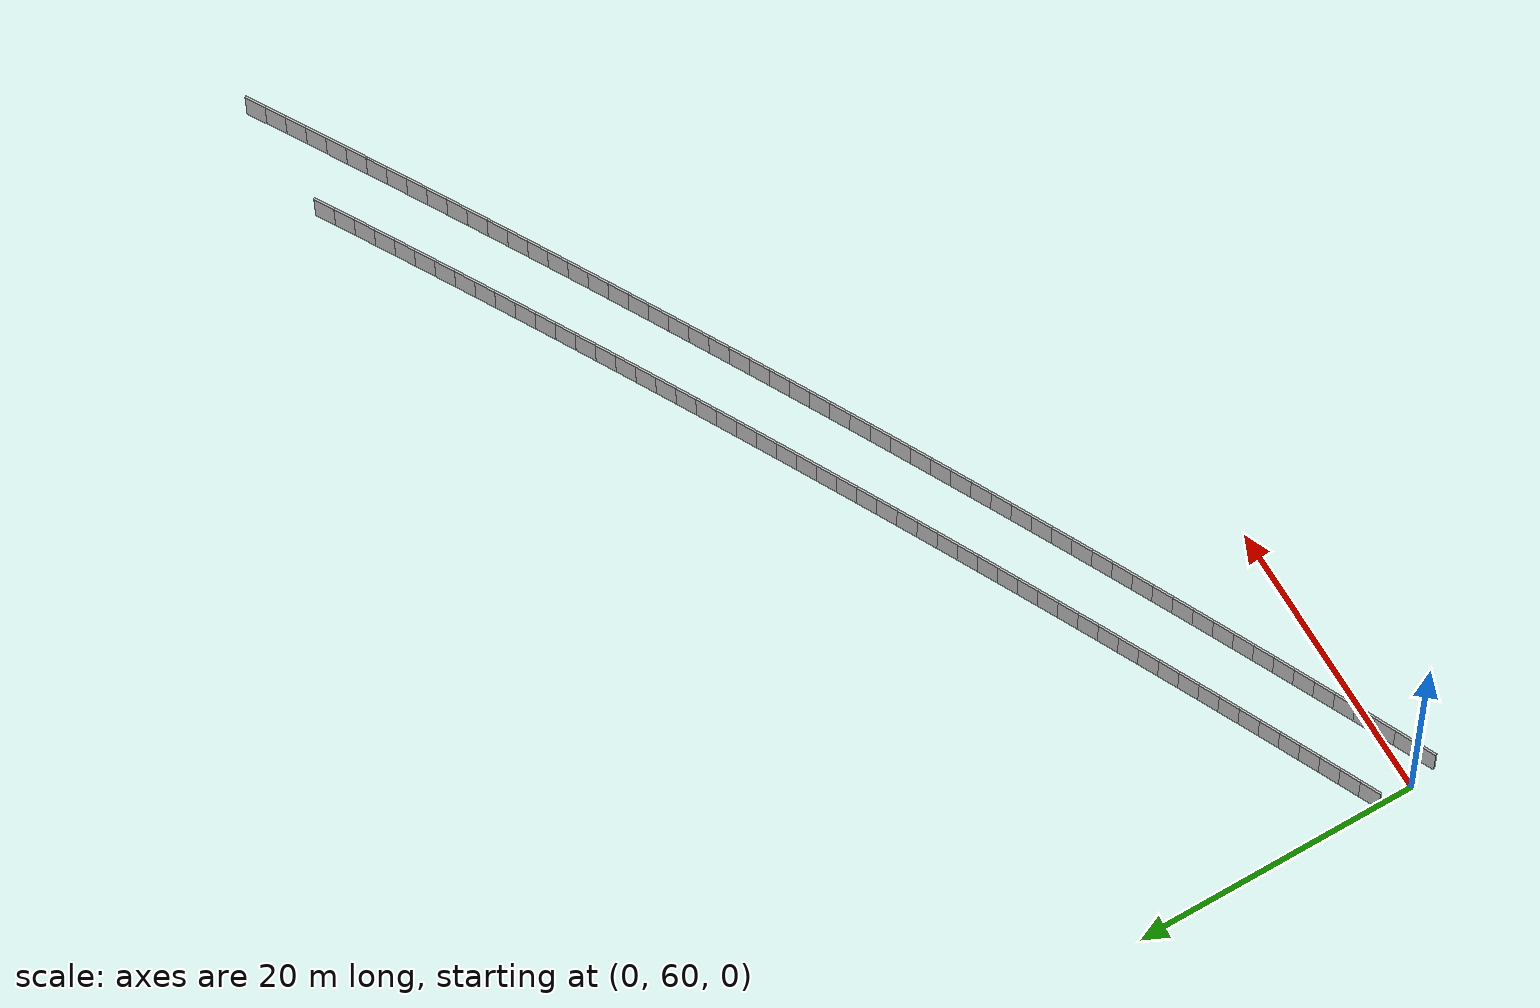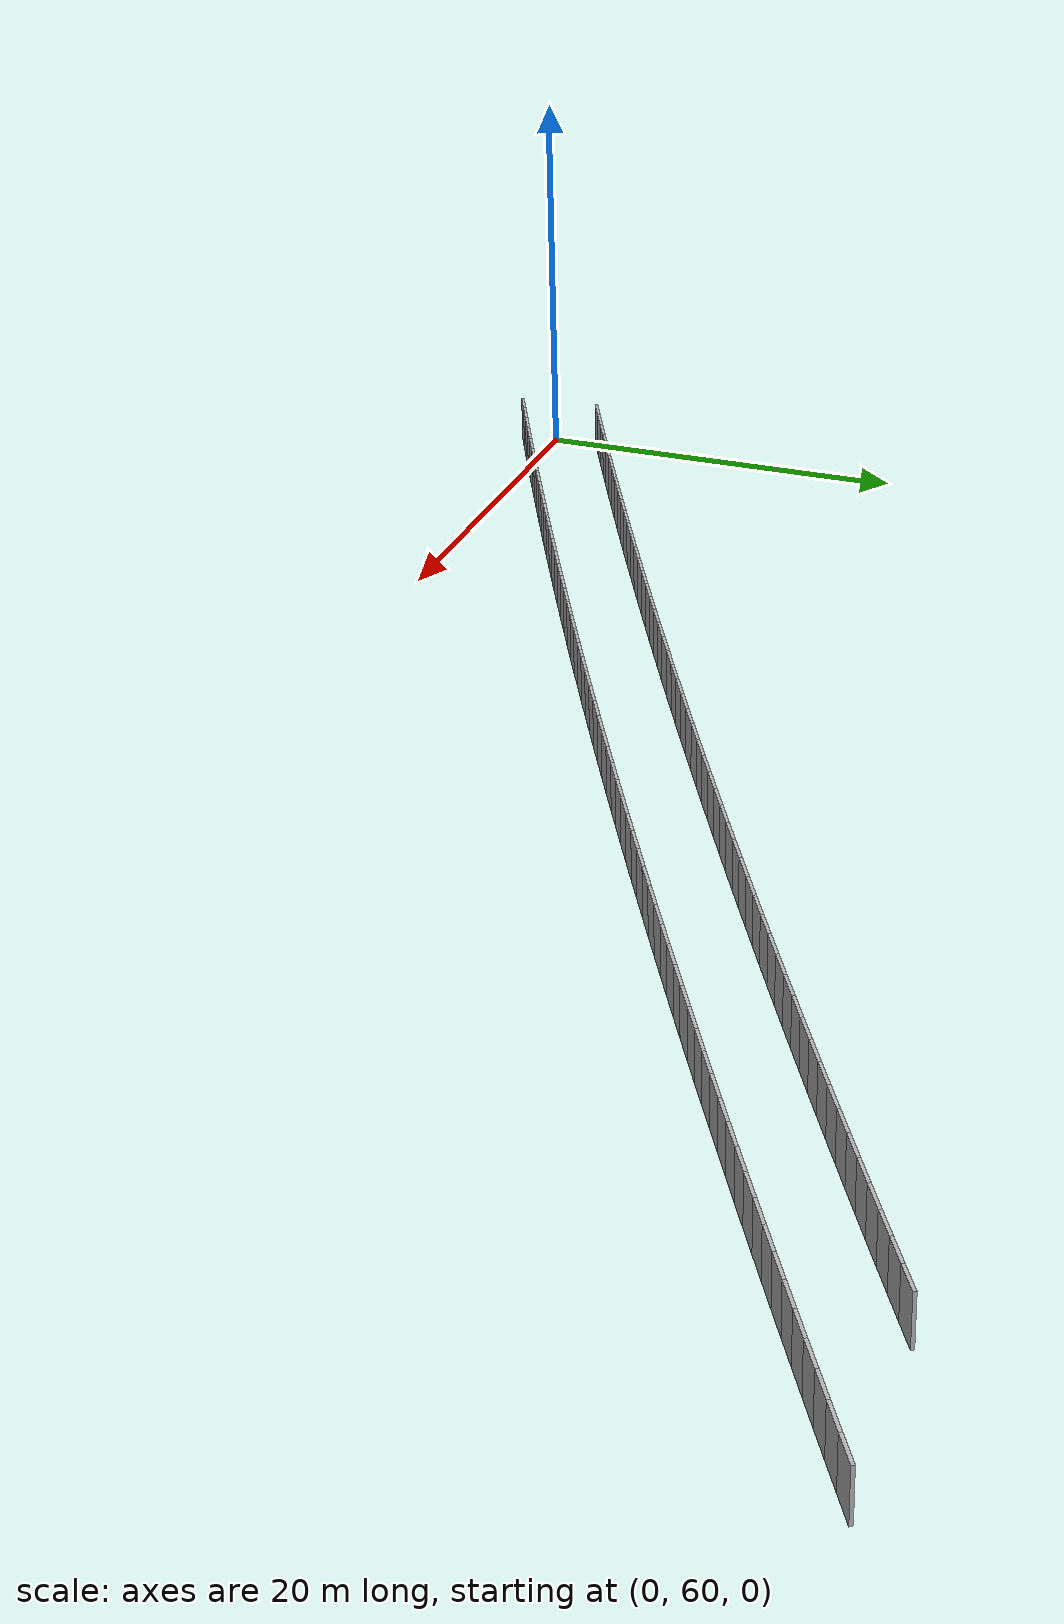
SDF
<sdf version="1.6">
 <model name="sps_1702">
  <static>1</static>
  <allow_auto_disable>0</allow_auto_disable>
  <link name="Wall3988">
   <collision name="collision"><geometry><box><size>1.49651 0.15 2.5</size></box></geometry></collision>
   <visual name="visual">
    <geometry><box><size>1.49651 0.15 2.5</size></box></geometry>
    <transparency>0.0</transparency>
   </visual>
   <pose>0.59185 62.7953 1.25 0 -0 0.449329</pose>
  </link>
  <link name="Wall3989">
   <collision name="collision"><geometry><box><size>1.4967 0.15 2.5</size></box></geometry></collision>
   <visual name="visual">
    <geometry><box><size>1.4967 0.15 2.5</size></box></geometry>
    <transparency>0.0</transparency>
   </visual>
   <pose>1.93944 63.4463 1.25 0 -0 0.450717</pose>
  </link>
  <link name="Wall3990">
   <collision name="collision"><geometry><box><size>1.49639 0.15 2.5</size></box></geometry></collision>
   <visual name="visual">
    <geometry><box><size>1.49639 0.15 2.5</size></box></geometry>
    <transparency>0.0</transparency>
   </visual>
   <pose>3.28597 64.0994 1.25 0 -0 0.452447</pose>
  </link>
  <link name="Wall3991">
   <collision name="collision"><geometry><box><size>1.49669 0.15 2.5</size></box></geometry></collision>
   <visual name="visual">
    <geometry><box><size>1.49669 0.15 2.5</size></box></geometry>
    <transparency>0.0</transparency>
   </visual>
   <pose>4.63137 64.7548 1.25 0 -0 0.454164</pose>
  </link>
  <link name="Wall3992">
   <collision name="collision"><geometry><box><size>1.49643 0.15 2.5</size></box></geometry></collision>
   <visual name="visual">
    <geometry><box><size>1.49643 0.15 2.5</size></box></geometry>
    <transparency>0.0</transparency>
   </visual>
   <pose>5.97576 65.4123 1.25 0 -0 0.455567</pose>
  </link>
  <link name="Wall3993">
   <collision name="collision"><geometry><box><size>1.49649 0.15 2.5</size></box></geometry></collision>
   <visual name="visual">
    <geometry><box><size>1.49649 0.15 2.5</size></box></geometry>
    <transparency>0.0</transparency>
   </visual>
   <pose>7.31905 66.0718 1.25 0 -0 0.457227</pose>
  </link>
  <link name="Wall3994">
   <collision name="collision"><geometry><box><size>1.49656 0.15 2.5</size></box></geometry></collision>
   <visual name="visual">
    <geometry><box><size>1.49656 0.15 2.5</size></box></geometry>
    <transparency>0.0</transparency>
   </visual>
   <pose>8.66134 66.7335 1.25 0 -0 0.458796</pose>
  </link>
  <link name="Wall3995">
   <collision name="collision"><geometry><box><size>1.4965 0.15 2.5</size></box></geometry></collision>
   <visual name="visual">
    <geometry><box><size>1.4965 0.15 2.5</size></box></geometry>
    <transparency>0.0</transparency>
   </visual>
   <pose>10.0026 67.3974 1.25 0 -0 0.460456</pose>
  </link>
  <link name="Wall3996">
   <collision name="collision"><geometry><box><size>1.49663 0.15 2.5</size></box></geometry></collision>
   <visual name="visual">
    <geometry><box><size>1.49663 0.15 2.5</size></box></geometry>
    <transparency>0.0</transparency>
   </visual>
   <pose>11.3428 68.0634 1.25 0 -0 0.461915</pose>
  </link>
  <link name="Wall3997">
   <collision name="collision"><geometry><box><size>1.49627 0.15 2.5</size></box></geometry></collision>
   <visual name="visual">
    <geometry><box><size>1.49627 0.15 2.5</size></box></geometry>
    <transparency>0.0</transparency>
   </visual>
   <pose>12.6818 68.7314 1.25 0 -0 0.463538</pose>
  </link>
  <link name="Wall3998">
   <collision name="collision"><geometry><box><size>1.49638 0.15 2.5</size></box></geometry></collision>
   <visual name="visual">
    <geometry><box><size>1.49638 0.15 2.5</size></box></geometry>
    <transparency>0.0</transparency>
   </visual>
   <pose>14.0197 69.4015 1.25 0 -0 0.465143</pose>
  </link>
  <link name="Wall3999">
   <collision name="collision"><geometry><box><size>1.4965 0.15 2.5</size></box></geometry></collision>
   <visual name="visual">
    <geometry><box><size>1.4965 0.15 2.5</size></box></geometry>
    <transparency>0.0</transparency>
   </visual>
   <pose>15.3567 70.0738 1.25 0 -0 0.466748</pose>
  </link>
  <link name="Wall4000">
   <collision name="collision"><geometry><box><size>1.49672 0.15 2.5</size></box></geometry></collision>
   <visual name="visual">
    <geometry><box><size>1.49672 0.15 2.5</size></box></geometry>
    <transparency>0.0</transparency>
   </visual>
   <pose>16.6926 70.7483 1.25 0 -0 0.468316</pose>
  </link>
  <link name="Wall4001">
   <collision name="collision"><geometry><box><size>1.4966 0.15 2.5</size></box></geometry></collision>
   <visual name="visual">
    <geometry><box><size>1.4966 0.15 2.5</size></box></geometry>
    <transparency>0.0</transparency>
   </visual>
   <pose>18.0276 71.4249 1.25 0 -0 0.469867</pose>
  </link>
  <link name="Wall4002">
   <collision name="collision"><geometry><box><size>1.49651 0.15 2.5</size></box></geometry></collision>
   <visual name="visual">
    <geometry><box><size>1.49651 0.15 2.5</size></box></geometry>
    <transparency>0.0</transparency>
   </visual>
   <pose>19.3614 72.1036 1.25 0 -0 0.471545</pose>
  </link>
  <link name="Wall4003">
   <collision name="collision"><geometry><box><size>1.49656 0.15 2.5</size></box></geometry></collision>
   <visual name="visual">
    <geometry><box><size>1.49656 0.15 2.5</size></box></geometry>
    <transparency>0.0</transparency>
   </visual>
   <pose>20.6941 72.7844 1.25 0 -0 0.473041</pose>
  </link>
  <link name="Wall4004">
   <collision name="collision"><geometry><box><size>1.49661 0.15 2.5</size></box></geometry></collision>
   <visual name="visual">
    <geometry><box><size>1.49661 0.15 2.5</size></box></geometry>
    <transparency>0.0</transparency>
   </visual>
   <pose>22.0258 73.4673 1.25 0 -0 0.474627</pose>
  </link>
  <link name="Wall4005">
   <collision name="collision"><geometry><box><size>1.49636 0.15 2.5</size></box></geometry></collision>
   <visual name="visual">
    <geometry><box><size>1.49636 0.15 2.5</size></box></geometry>
    <transparency>0.0</transparency>
   </visual>
   <pose>23.3563 74.1523 1.25 0 -0 0.476271</pose>
  </link>
  <link name="Wall4006">
   <collision name="collision"><geometry><box><size>1.49658 0.15 2.5</size></box></geometry></collision>
   <visual name="visual">
    <geometry><box><size>1.49658 0.15 2.5</size></box></geometry>
    <transparency>0.0</transparency>
   </visual>
   <pose>24.6858 74.8394 1.25 0 -0 0.477801</pose>
  </link>
  <link name="Wall4007">
   <collision name="collision"><geometry><box><size>1.49676 0.15 2.5</size></box></geometry></collision>
   <visual name="visual">
    <geometry><box><size>1.49676 0.15 2.5</size></box></geometry>
    <transparency>0.0</transparency>
   </visual>
   <pose>26.0142 75.5287 1.25 0 -0 0.479441</pose>
  </link>
  <link name="Wall4008">
   <collision name="collision"><geometry><box><size>1.49642 0.15 2.5</size></box></geometry></collision>
   <visual name="visual">
    <geometry><box><size>1.49642 0.15 2.5</size></box></geometry>
    <transparency>0.0</transparency>
   </visual>
   <pose>27.3415 76.2201 1.25 0 -0 0.481032</pose>
  </link>
  <link name="Wall4009">
   <collision name="collision"><geometry><box><size>1.49648 0.15 2.5</size></box></geometry></collision>
   <visual name="visual">
    <geometry><box><size>1.49648 0.15 2.5</size></box></geometry>
    <transparency>0.0</transparency>
   </visual>
   <pose>28.6677 76.9135 1.25 0 -0 0.482527</pose>
  </link>
  <link name="Wall4010">
   <collision name="collision"><geometry><box><size>1.49659 0.15 2.5</size></box></geometry></collision>
   <visual name="visual">
    <geometry><box><size>1.49659 0.15 2.5</size></box></geometry>
    <transparency>0.0</transparency>
   </visual>
   <pose>29.9928 77.609 1.25 0 -0 0.484149</pose>
  </link>
  <link name="Wall4011">
   <collision name="collision"><geometry><box><size>1.4965 0.15 2.5</size></box></geometry></collision>
   <visual name="visual">
    <geometry><box><size>1.4965 0.15 2.5</size></box></geometry>
    <transparency>0.0</transparency>
   </visual>
   <pose>31.3168 78.3066 1.25 0 -0 0.485701</pose>
  </link>
  <link name="Wall4012">
   <collision name="collision"><geometry><box><size>1.49645 0.15 2.5</size></box></geometry></collision>
   <visual name="visual">
    <geometry><box><size>1.49645 0.15 2.5</size></box></geometry>
    <transparency>0.0</transparency>
   </visual>
   <pose>32.6396 79.0063 1.25 0 -0 0.487381</pose>
  </link>
  <link name="Wall4013">
   <collision name="collision"><geometry><box><size>1.49661 0.15 2.5</size></box></geometry></collision>
   <visual name="visual">
    <geometry><box><size>1.49661 0.15 2.5</size></box></geometry>
    <transparency>0.0</transparency>
   </visual>
   <pose>33.9614 79.7081 1.25 0 -0 0.488801</pose>
  </link>
  <link name="Wall4014">
   <collision name="collision"><geometry><box><size>1.49649 0.15 2.5</size></box></geometry></collision>
   <visual name="visual">
    <geometry><box><size>1.49649 0.15 2.5</size></box></geometry>
    <transparency>0.0</transparency>
   </visual>
   <pose>35.282 80.412 1.25 0 -0 0.490555</pose>
  </link>
  <link name="Wall4015">
   <collision name="collision"><geometry><box><size>1.49657 0.15 2.5</size></box></geometry></collision>
   <visual name="visual">
    <geometry><box><size>1.49657 0.15 2.5</size></box></geometry>
    <transparency>0.0</transparency>
   </visual>
   <pose>36.6016 81.118 1.25 0 -0 0.492049</pose>
  </link>
  <link name="Wall4016">
   <collision name="collision"><geometry><box><size>1.49651 0.15 2.5</size></box></geometry></collision>
   <visual name="visual">
    <geometry><box><size>1.49651 0.15 2.5</size></box></geometry>
    <transparency>0.0</transparency>
   </visual>
   <pose>37.92 81.8261 1.25 0 -0 0.493693</pose>
  </link>
  <link name="Wall4017">
   <collision name="collision"><geometry><box><size>1.49674 0.15 2.5</size></box></geometry></collision>
   <visual name="visual">
    <geometry><box><size>1.49674 0.15 2.5</size></box></geometry>
    <transparency>0.0</transparency>
   </visual>
   <pose>39.2374 82.5363 1.25 0 -0 0.495184</pose>
  </link>
  <link name="Wall4018">
   <collision name="collision"><geometry><box><size>1.49658 0.15 2.5</size></box></geometry></collision>
   <visual name="visual">
    <geometry><box><size>1.49658 0.15 2.5</size></box></geometry>
    <transparency>0.0</transparency>
   </visual>
   <pose>40.5536 83.2486 1.25 0 -0 0.496867</pose>
  </link>
  <link name="Wall4019">
   <collision name="collision"><geometry><box><size>1.49647 0.15 2.5</size></box></geometry></collision>
   <visual name="visual">
    <geometry><box><size>1.49647 0.15 2.5</size></box></geometry>
    <transparency>0.0</transparency>
   </visual>
   <pose>41.8686 83.963 1.25 0 -0 0.498439</pose>
  </link>
  <link name="Wall4020">
   <collision name="collision"><geometry><box><size>1.49641 0.15 2.5</size></box></geometry></collision>
   <visual name="visual">
    <geometry><box><size>1.49641 0.15 2.5</size></box></geometry>
    <transparency>0.0</transparency>
   </visual>
   <pose>43.1825 84.6794 1.25 0 -0 0.499991</pose>
  </link>
  <link name="Wall4021">
   <collision name="collision"><geometry><box><size>1.49656 0.15 2.5</size></box></geometry></collision>
   <visual name="visual">
    <geometry><box><size>1.49656 0.15 2.5</size></box></geometry>
    <transparency>0.0</transparency>
   </visual>
   <pose>44.4952 85.3979 1.25 0 -0 0.501612</pose>
  </link>
  <link name="Wall4022">
   <collision name="collision"><geometry><box><size>1.49655 0.15 2.5</size></box></geometry></collision>
   <visual name="visual">
    <geometry><box><size>1.49655 0.15 2.5</size></box></geometry>
    <transparency>0.0</transparency>
   </visual>
   <pose>45.8068 86.1186 1.25 0 -0 0.503292</pose>
  </link>
  <link name="Wall4023">
   <collision name="collision"><geometry><box><size>1.49639 0.15 2.5</size></box></geometry></collision>
   <visual name="visual">
    <geometry><box><size>1.49639 0.15 2.5</size></box></geometry>
    <transparency>0.0</transparency>
   </visual>
   <pose>47.1171 86.8413 1.25 0 -0 0.504702</pose>
  </link>
  <link name="Wall4024">
   <collision name="collision"><geometry><box><size>1.49657 0.15 2.5</size></box></geometry></collision>
   <visual name="visual">
    <geometry><box><size>1.49657 0.15 2.5</size></box></geometry>
    <transparency>0.0</transparency>
   </visual>
   <pose>48.4264 87.566 1.25 0 -0 0.506358</pose>
  </link>
  <link name="Wall4025">
   <collision name="collision"><geometry><box><size>1.49651 0.15 2.5</size></box></geometry></collision>
   <visual name="visual">
    <geometry><box><size>1.49651 0.15 2.5</size></box></geometry>
    <transparency>0.0</transparency>
   </visual>
   <pose>49.7346 88.2928 1.25 0 -0 0.507875</pose>
  </link>
  <link name="Wall4026">
   <collision name="collision"><geometry><box><size>1.49667 0.15 2.5</size></box></geometry></collision>
   <visual name="visual">
    <geometry><box><size>1.49667 0.15 2.5</size></box></geometry>
    <transparency>0.0</transparency>
   </visual>
   <pose>51.0417 89.0217 1.25 0 -0 0.509495</pose>
  </link>
  <link name="Wall4027">
   <collision name="collision"><geometry><box><size>1.49648 0.15 2.5</size></box></geometry></collision>
   <visual name="visual">
    <geometry><box><size>1.49648 0.15 2.5</size></box></geometry>
    <transparency>0.0</transparency>
   </visual>
   <pose>52.3476 89.7527 1.25 0 -0 0.511108</pose>
  </link>
  <link name="Wall4028">
   <collision name="collision"><geometry><box><size>1.49656 0.15 2.5</size></box></geometry></collision>
   <visual name="visual">
    <geometry><box><size>1.49656 0.15 2.5</size></box></geometry>
    <transparency>0.0</transparency>
   </visual>
   <pose>53.6524 90.4857 1.25 0 -0 0.512621</pose>
  </link>
  <link name="Wall4029">
   <collision name="collision"><geometry><box><size>1.49658 0.15 2.5</size></box></geometry></collision>
   <visual name="visual">
    <geometry><box><size>1.49658 0.15 2.5</size></box></geometry>
    <transparency>0.0</transparency>
   </visual>
   <pose>54.956 91.2208 1.25 0 -0 0.5143</pose>
  </link>
  <link name="Wall4030">
   <collision name="collision"><geometry><box><size>1.49656 0.15 2.5</size></box></geometry></collision>
   <visual name="visual">
    <geometry><box><size>1.49656 0.15 2.5</size></box></geometry>
    <transparency>0.0</transparency>
   </visual>
   <pose>56.2584 91.958 1.25 0 -0 0.515853</pose>
  </link>
  <link name="Wall4031">
   <collision name="collision"><geometry><box><size>1.49647 0.15 2.5</size></box></geometry></collision>
   <visual name="visual">
    <geometry><box><size>1.49647 0.15 2.5</size></box></geometry>
    <transparency>0.0</transparency>
   </visual>
   <pose>57.5596 92.6972 1.25 0 -0 0.517391</pose>
  </link>
  <link name="Wall4032">
   <collision name="collision"><geometry><box><size>1.49652 0.15 2.5</size></box></geometry></collision>
   <visual name="visual">
    <geometry><box><size>1.49652 0.15 2.5</size></box></geometry>
    <transparency>0.0</transparency>
   </visual>
   <pose>58.8595 93.4385 1.25 0 -0 0.519106</pose>
  </link>
  <link name="Wall4033">
   <collision name="collision"><geometry><box><size>1.49649 0.15 2.5</size></box></geometry></collision>
   <visual name="visual">
    <geometry><box><size>1.49649 0.15 2.5</size></box></geometry>
    <transparency>0.0</transparency>
   </visual>
   <pose>60.1583 94.1819 1.25 0 -0 0.520623</pose>
  </link>
  <link name="Wall4034">
   <collision name="collision"><geometry><box><size>1.49659 0.15 2.5</size></box></geometry></collision>
   <visual name="visual">
    <geometry><box><size>1.49659 0.15 2.5</size></box></geometry>
    <transparency>0.0</transparency>
   </visual>
   <pose>61.456 94.9273 1.25 0 -0 0.522136</pose>
  </link>
  <link name="Wall4035">
   <collision name="collision"><geometry><box><size>1.49659 0.15 2.5</size></box></geometry></collision>
   <visual name="visual">
    <geometry><box><size>1.49659 0.15 2.5</size></box></geometry>
    <transparency>0.0</transparency>
   </visual>
   <pose>62.7526 95.6747 1.25 0 -0 0.523689</pose>
  </link>
  <link name="Wall4036">
   <collision name="collision"><geometry><box><size>1.49648 0.15 2.5</size></box></geometry></collision>
   <visual name="visual">
    <geometry><box><size>1.49648 0.15 2.5</size></box></geometry>
    <transparency>0.0</transparency>
   </visual>
   <pose>64.048 96.4242 1.25 0 -0 0.525429</pose>
  </link>
  <link name="Wall4037">
   <collision name="collision"><geometry><box><size>1.4964 0.15 2.5</size></box></geometry></collision>
   <visual name="visual">
    <geometry><box><size>1.4964 0.15 2.5</size></box></geometry>
    <transparency>0.0</transparency>
   </visual>
   <pose>65.342 97.1758 1.25 0 -0 0.526968</pose>
  </link>
  <link name="Wall4038">
   <collision name="collision"><geometry><box><size>1.49643 0.15 2.5</size></box></geometry></collision>
   <visual name="visual">
    <geometry><box><size>1.49643 0.15 2.5</size></box></geometry>
    <transparency>0.0</transparency>
   </visual>
   <pose>66.6348 97.9293 1.25 0 -0 0.528374</pose>
  </link>
  <link name="Wall4039">
   <collision name="collision"><geometry><box><size>1.49666 0.15 2.5</size></box></geometry></collision>
   <visual name="visual">
    <geometry><box><size>1.49666 0.15 2.5</size></box></geometry>
    <transparency>0.0</transparency>
   </visual>
   <pose>67.9266 98.6849 1.25 0 -0 0.530173</pose>
  </link>
  <link name="Wall4040">
   <collision name="collision"><geometry><box><size>1.49656 0.15 2.5</size></box></geometry></collision>
   <visual name="visual">
    <geometry><box><size>1.49656 0.15 2.5</size></box></geometry>
    <transparency>0.0</transparency>
   </visual>
   <pose>69.2172 99.4426 1.25 0 -0 0.531586</pose>
  </link>
  <link name="Wall7762">
   <collision name="collision"><geometry><box><size>1.50307 0.15 2.5</size></box></geometry></collision>
   <visual name="visual">
    <geometry><box><size>1.50307 0.15 2.5</size></box></geometry>
    <transparency>0.0</transparency>
   </visual>
   <pose>1.03774 58.4148 1.25 0 -0 0.44763</pose>
  </link>
  <link name="Wall7763">
   <collision name="collision"><geometry><box><size>1.50317 0.15 2.5</size></box></geometry></collision>
   <visual name="visual">
    <geometry><box><size>1.50317 0.15 2.5</size></box></geometry>
    <transparency>0.0</transparency>
   </visual>
   <pose>2.39223 59.0665 1.25 0 -0 0.449265</pose>
  </link>
  <link name="Wall7764">
   <collision name="collision"><geometry><box><size>1.50305 0.15 2.5</size></box></geometry></collision>
   <visual name="visual">
    <geometry><box><size>1.50305 0.15 2.5</size></box></geometry>
    <transparency>0.0</transparency>
   </visual>
   <pose>3.74566 59.7204 1.25 0 -0 0.450881</pose>
  </link>
  <link name="Wall7765">
   <collision name="collision"><geometry><box><size>1.50297 0.15 2.5</size></box></geometry></collision>
   <visual name="visual">
    <geometry><box><size>1.50297 0.15 2.5</size></box></geometry>
    <transparency>0.0</transparency>
   </visual>
   <pose>5.09795 60.3764 1.25 0 -0 0.452442</pose>
  </link>
  <link name="Wall7766">
   <collision name="collision"><geometry><box><size>1.50316 0.15 2.5</size></box></geometry></collision>
   <visual name="visual">
    <geometry><box><size>1.50316 0.15 2.5</size></box></geometry>
    <transparency>0.0</transparency>
   </visual>
   <pose>6.44924 61.0346 1.25 0 -0 0.454096</pose>
  </link>
  <link name="Wall7767">
   <collision name="collision"><geometry><box><size>1.50298 0.15 2.5</size></box></geometry></collision>
   <visual name="visual">
    <geometry><box><size>1.50298 0.15 2.5</size></box></geometry>
    <transparency>0.0</transparency>
   </visual>
   <pose>7.79946 61.695 1.25 0 -0 0.455693</pose>
  </link>
  <link name="Wall7768">
   <collision name="collision"><geometry><box><size>1.50321 0.15 2.5</size></box></geometry></collision>
   <visual name="visual">
    <geometry><box><size>1.50321 0.15 2.5</size></box></geometry>
    <transparency>0.0</transparency>
   </visual>
   <pose>9.14867 62.3575 1.25 0 -0 0.457201</pose>
  </link>
  <link name="Wall7769">
   <collision name="collision"><geometry><box><size>1.503 0.15 2.5</size></box></geometry></collision>
   <visual name="visual">
    <geometry><box><size>1.503 0.15 2.5</size></box></geometry>
    <transparency>0.0</transparency>
   </visual>
   <pose>10.4969 63.0221 1.25 0 -0 0.458762</pose>
  </link>
  <link name="Wall7770">
   <collision name="collision"><geometry><box><size>1.50316 0.15 2.5</size></box></geometry></collision>
   <visual name="visual">
    <geometry><box><size>1.50316 0.15 2.5</size></box></geometry>
    <transparency>0.0</transparency>
   </visual>
   <pose>11.844 63.6889 1.25 0 -0 0.460524</pose>
  </link>
  <link name="Wall7771">
   <collision name="collision"><geometry><box><size>1.50299 0.15 2.5</size></box></geometry></collision>
   <visual name="visual">
    <geometry><box><size>1.50299 0.15 2.5</size></box></geometry>
    <transparency>0.0</transparency>
   </visual>
   <pose>13.1899 64.3579 1.25 0 -0 0.462031</pose>
  </link>
  <link name="Wall7772">
   <collision name="collision"><geometry><box><size>1.50301 0.15 2.5</size></box></geometry></collision>
   <visual name="visual">
    <geometry><box><size>1.50301 0.15 2.5</size></box></geometry>
    <transparency>0.0</transparency>
   </visual>
   <pose>14.5348 65.0289 1.25 0 -0 0.46352</pose>
  </link>
  <link name="Wall7773">
   <collision name="collision"><geometry><box><size>1.50307 0.15 2.5</size></box></geometry></collision>
   <visual name="visual">
    <geometry><box><size>1.50307 0.15 2.5</size></box></geometry>
    <transparency>0.0</transparency>
   </visual>
   <pose>15.8787 65.702 1.25 0 -0 0.465137</pose>
  </link>
  <link name="Wall7774">
   <collision name="collision"><geometry><box><size>1.50318 0.15 2.5</size></box></geometry></collision>
   <visual name="visual">
    <geometry><box><size>1.50318 0.15 2.5</size></box></geometry>
    <transparency>0.0</transparency>
   </visual>
   <pose>17.2216 66.3773 1.25 0 -0 0.466735</pose>
  </link>
  <link name="Wall7775">
   <collision name="collision"><geometry><box><size>1.503 0.15 2.5</size></box></geometry></collision>
   <visual name="visual">
    <geometry><box><size>1.503 0.15 2.5</size></box></geometry>
    <transparency>0.0</transparency>
   </visual>
   <pose>18.5634 67.0547 1.25 0 -0 0.468297</pose>
  </link>
  <link name="Wall7776">
   <collision name="collision"><geometry><box><size>1.50312 0.15 2.5</size></box></geometry></collision>
   <visual name="visual">
    <geometry><box><size>1.50312 0.15 2.5</size></box></geometry>
    <transparency>0.0</transparency>
   </visual>
   <pose>19.9041 67.7342 1.25 0 -0 0.469894</pose>
  </link>
  <link name="Wall7777">
   <collision name="collision"><geometry><box><size>1.50325 0.15 2.5</size></box></geometry></collision>
   <visual name="visual">
    <geometry><box><size>1.50325 0.15 2.5</size></box></geometry>
    <transparency>0.0</transparency>
   </visual>
   <pose>21.2439 68.4159 1.25 0 -0 0.471492</pose>
  </link>
  <link name="Wall7778">
   <collision name="collision"><geometry><box><size>1.50303 0.15 2.5</size></box></geometry></collision>
   <visual name="visual">
    <geometry><box><size>1.50303 0.15 2.5</size></box></geometry>
    <transparency>0.0</transparency>
   </visual>
   <pose>22.5825 69.0997 1.25 0 -0 0.473073</pose>
  </link>
  <link name="Wall7779">
   <collision name="collision"><geometry><box><size>1.50297 0.15 2.5</size></box></geometry></collision>
   <visual name="visual">
    <geometry><box><size>1.50297 0.15 2.5</size></box></geometry>
    <transparency>0.0</transparency>
   </visual>
   <pose>23.9199 69.7855 1.25 0 -0 0.474599</pose>
  </link>
  <link name="Wall7780">
   <collision name="collision"><geometry><box><size>1.50305 0.15 2.5</size></box></geometry></collision>
   <visual name="visual">
    <geometry><box><size>1.50305 0.15 2.5</size></box></geometry>
    <transparency>0.0</transparency>
   </visual>
   <pose>25.2562 70.4735 1.25 0 -0 0.476306</pose>
  </link>
  <link name="Wall7781">
   <collision name="collision"><geometry><box><size>1.50319 0.15 2.5</size></box></geometry></collision>
   <visual name="visual">
    <geometry><box><size>1.50319 0.15 2.5</size></box></geometry>
    <transparency>0.0</transparency>
   </visual>
   <pose>26.5915 71.1637 1.25 0 -0 0.477812</pose>
  </link>
  <link name="Wall7782">
   <collision name="collision"><geometry><box><size>1.50295 0.15 2.5</size></box></geometry></collision>
   <visual name="visual">
    <geometry><box><size>1.50295 0.15 2.5</size></box></geometry>
    <transparency>0.0</transparency>
   </visual>
   <pose>27.9257 71.8559 1.25 0 -0 0.479358</pose>
  </link>
  <link name="Wall7783">
   <collision name="collision"><geometry><box><size>1.50327 0.15 2.5</size></box></geometry></collision>
   <visual name="visual">
    <geometry><box><size>1.50327 0.15 2.5</size></box></geometry>
    <transparency>0.0</transparency>
   </visual>
   <pose>29.2588 72.5503 1.25 0 -0 0.48108</pose>
  </link>
  <link name="Wall7784">
   <collision name="collision"><geometry><box><size>1.50295 0.15 2.5</size></box></geometry></collision>
   <visual name="visual">
    <geometry><box><size>1.50295 0.15 2.5</size></box></geometry>
    <transparency>0.0</transparency>
   </visual>
   <pose>30.5908 73.2468 1.25 0 -0 0.482518</pose>
  </link>
  <link name="Wall7785">
   <collision name="collision"><geometry><box><size>1.50319 0.15 2.5</size></box></geometry></collision>
   <visual name="visual">
    <geometry><box><size>1.50319 0.15 2.5</size></box></geometry>
    <transparency>0.0</transparency>
   </visual>
   <pose>31.9217 73.9453 1.25 0 -0 0.484132</pose>
  </link>
  <link name="Wall7786">
   <collision name="collision"><geometry><box><size>1.50305 0.15 2.5</size></box></geometry></collision>
   <visual name="visual">
    <geometry><box><size>1.50305 0.15 2.5</size></box></geometry>
    <transparency>0.0</transparency>
   </visual>
   <pose>33.2515 74.646 1.25 0 -0 0.485787</pose>
  </link>
  <link name="Wall7787">
   <collision name="collision"><geometry><box><size>1.50297 0.15 2.5</size></box></geometry></collision>
   <visual name="visual">
    <geometry><box><size>1.50297 0.15 2.5</size></box></geometry>
    <transparency>0.0</transparency>
   </visual>
   <pose>34.58 75.3488 1.25 0 -0 0.487332</pose>
  </link>
  <link name="Wall7788">
   <collision name="collision"><geometry><box><size>1.50321 0.15 2.5</size></box></geometry></collision>
   <visual name="visual">
    <geometry><box><size>1.50321 0.15 2.5</size></box></geometry>
    <transparency>0.0</transparency>
   </visual>
   <pose>35.9076 76.0536 1.25 0 -0 0.488763</pose>
  </link>
  <link name="Wall7789">
   <collision name="collision"><geometry><box><size>1.50301 0.15 2.5</size></box></geometry></collision>
   <visual name="visual">
    <geometry><box><size>1.50301 0.15 2.5</size></box></geometry>
    <transparency>0.0</transparency>
   </visual>
   <pose>37.2342 76.7605 1.25 0 -0 0.490492</pose>
  </link>
  <link name="Wall7790">
   <collision name="collision"><geometry><box><size>1.50318 0.15 2.5</size></box></geometry></collision>
   <visual name="visual">
    <geometry><box><size>1.50318 0.15 2.5</size></box></geometry>
    <transparency>0.0</transparency>
   </visual>
   <pose>38.5595 77.4696 1.25 0 -0 0.492088</pose>
  </link>
  <link name="Wall7791">
   <collision name="collision"><geometry><box><size>1.50307 0.15 2.5</size></box></geometry></collision>
   <visual name="visual">
    <geometry><box><size>1.50307 0.15 2.5</size></box></geometry>
    <transparency>0.0</transparency>
   </visual>
   <pose>39.8837 78.1809 1.25 0 -0 0.493743</pose>
  </link>
  <link name="Wall7792">
   <collision name="collision"><geometry><box><size>1.50325 0.15 2.5</size></box></geometry></collision>
   <visual name="visual">
    <geometry><box><size>1.50325 0.15 2.5</size></box></geometry>
    <transparency>0.0</transparency>
   </visual>
   <pose>41.2067 78.8943 1.25 0 -0 0.495248</pose>
  </link>
  <link name="Wall7793">
   <collision name="collision"><geometry><box><size>1.50313 0.15 2.5</size></box></geometry></collision>
   <visual name="visual">
    <geometry><box><size>1.50313 0.15 2.5</size></box></geometry>
    <transparency>0.0</transparency>
   </visual>
   <pose>42.5288 79.6097 1.25 0 -0 0.496813</pose>
  </link>
  <link name="Wall7794">
   <collision name="collision"><geometry><box><size>1.50292 0.15 2.5</size></box></geometry></collision>
   <visual name="visual">
    <geometry><box><size>1.50292 0.15 2.5</size></box></geometry>
    <transparency>0.0</transparency>
   </visual>
   <pose>43.8495 80.3272 1.25 0 -0 0.498507</pose>
  </link>
  <link name="Wall7795">
   <collision name="collision"><geometry><box><size>1.50316 0.15 2.5</size></box></geometry></collision>
   <visual name="visual">
    <geometry><box><size>1.50316 0.15 2.5</size></box></geometry>
    <transparency>0.0</transparency>
   </visual>
   <pose>45.1691 81.0468 1.25 0 -0 0.499992</pose>
  </link>
  <link name="Wall7796">
   <collision name="collision"><geometry><box><size>1.50301 0.15 2.5</size></box></geometry></collision>
   <visual name="visual">
    <geometry><box><size>1.50301 0.15 2.5</size></box></geometry>
    <transparency>0.0</transparency>
   </visual>
   <pose>46.4875 81.7685 1.25 0 -0 0.501667</pose>
  </link>
  <link name="Wall7797">
   <collision name="collision"><geometry><box><size>1.50303 0.15 2.5</size></box></geometry></collision>
   <visual name="visual">
    <geometry><box><size>1.50303 0.15 2.5</size></box></geometry>
    <transparency>0.0</transparency>
   </visual>
   <pose>47.8049 82.4922 1.25 0 -0 0.503048</pose>
  </link>
  <link name="Wall7798">
   <collision name="collision"><geometry><box><size>1.50319 0.15 2.5</size></box></geometry></collision>
   <visual name="visual">
    <geometry><box><size>1.50319 0.15 2.5</size></box></geometry>
    <transparency>0.0</transparency>
   </visual>
   <pose>49.1212 83.2179 1.25 0 -0 0.504661</pose>
  </link>
  <link name="Wall7799">
   <collision name="collision"><geometry><box><size>1.50302 0.15 2.5</size></box></geometry></collision>
   <visual name="visual">
    <geometry><box><size>1.50302 0.15 2.5</size></box></geometry>
    <transparency>0.0</transparency>
   </visual>
   <pose>50.4363 83.9458 1.25 0 -0 0.506392</pose>
  </link>
  <link name="Wall7800">
   <collision name="collision"><geometry><box><size>1.50302 0.15 2.5</size></box></geometry></collision>
   <visual name="visual">
    <geometry><box><size>1.50302 0.15 2.5</size></box></geometry>
    <transparency>0.0</transparency>
   </visual>
   <pose>51.7501 84.6759 1.25 0 -0 0.508065</pose>
  </link>
  <link name="Wall7801">
   <collision name="collision"><geometry><box><size>1.50312 0.15 2.5</size></box></geometry></collision>
   <visual name="visual">
    <geometry><box><size>1.50312 0.15 2.5</size></box></geometry>
    <transparency>0.0</transparency>
   </visual>
   <pose>53.0627 85.4081 1.25 0 -0 0.509516</pose>
  </link>
  <link name="Wall7802">
   <collision name="collision"><geometry><box><size>1.50312 0.15 2.5</size></box></geometry></collision>
   <visual name="visual">
    <geometry><box><size>1.50312 0.15 2.5</size></box></geometry>
    <transparency>0.0</transparency>
   </visual>
   <pose>54.3744 86.1423 1.25 0 -0 0.511098</pose>
  </link>
  <link name="Wall7803">
   <collision name="collision"><geometry><box><size>1.50317 0.15 2.5</size></box></geometry></collision>
   <visual name="visual">
    <geometry><box><size>1.50317 0.15 2.5</size></box></geometry>
    <transparency>0.0</transparency>
   </visual>
   <pose>55.6849 86.8785 1.25 0 -0 0.512569</pose>
  </link>
  <link name="Wall7804">
   <collision name="collision"><geometry><box><size>1.50303 0.15 2.5</size></box></geometry></collision>
   <visual name="visual">
    <geometry><box><size>1.50303 0.15 2.5</size></box></geometry>
    <transparency>0.0</transparency>
   </visual>
   <pose>56.9942 87.6168 1.25 0 -0 0.514301</pose>
  </link>
  <link name="Wall7805">
   <collision name="collision"><geometry><box><size>1.50299 0.15 2.5</size></box></geometry></collision>
   <visual name="visual">
    <geometry><box><size>1.50299 0.15 2.5</size></box></geometry>
    <transparency>0.0</transparency>
   </visual>
   <pose>58.3021 88.3572 1.25 0 -0 0.515902</pose>
  </link>
  <link name="Wall7806">
   <collision name="collision"><geometry><box><size>1.50308 0.15 2.5</size></box></geometry></collision>
   <visual name="visual">
    <geometry><box><size>1.50308 0.15 2.5</size></box></geometry>
    <transparency>0.0</transparency>
   </visual>
   <pose>59.609 89.0996 1.25 0 -0 0.517318</pose>
  </link>
  <link name="Wall7807">
   <collision name="collision"><geometry><box><size>1.50319 0.15 2.5</size></box></geometry></collision>
   <visual name="visual">
    <geometry><box><size>1.50319 0.15 2.5</size></box></geometry>
    <transparency>0.0</transparency>
   </visual>
   <pose>60.9148 89.8441 1.25 0 -0 0.519005</pose>
  </link>
  <link name="Wall7808">
   <collision name="collision"><geometry><box><size>1.50292 0.15 2.5</size></box></geometry></collision>
   <visual name="visual">
    <geometry><box><size>1.50292 0.15 2.5</size></box></geometry>
    <transparency>0.0</transparency>
   </visual>
   <pose>62.2194 90.5907 1.25 0 -0 0.520652</pose>
  </link>
  <link name="Wall7809">
   <collision name="collision"><geometry><box><size>1.50316 0.15 2.5</size></box></geometry></collision>
   <visual name="visual">
    <geometry><box><size>1.50316 0.15 2.5</size></box></geometry>
    <transparency>0.0</transparency>
   </visual>
   <pose>63.5226 91.3394 1.25 0 -0 0.522243</pose>
  </link>
  <link name="Wall7810">
   <collision name="collision"><geometry><box><size>1.50313 0.15 2.5</size></box></geometry></collision>
   <visual name="visual">
    <geometry><box><size>1.50313 0.15 2.5</size></box></geometry>
    <transparency>0.0</transparency>
   </visual>
   <pose>64.8249 92.0902 1.25 0 -0 0.523754</pose>
  </link>
  <link name="Wall7811">
   <collision name="collision"><geometry><box><size>1.50309 0.15 2.5</size></box></geometry></collision>
   <visual name="visual">
    <geometry><box><size>1.50309 0.15 2.5</size></box></geometry>
    <transparency>0.0</transparency>
   </visual>
   <pose>66.1259 92.843 1.25 0 -0 0.525321</pose>
  </link>
  <link name="Wall7812">
   <collision name="collision"><geometry><box><size>1.50323 0.15 2.5</size></box></geometry></collision>
   <visual name="visual">
    <geometry><box><size>1.50323 0.15 2.5</size></box></geometry>
    <transparency>0.0</transparency>
   </visual>
   <pose>67.4258 93.5978 1.25 0 -0 0.526862</pose>
  </link>
  <link name="Wall7813">
   <collision name="collision"><geometry><box><size>1.50309 0.15 2.5</size></box></geometry></collision>
   <visual name="visual">
    <geometry><box><size>1.50309 0.15 2.5</size></box></geometry>
    <transparency>0.0</transparency>
   </visual>
   <pose>68.7244 94.3547 1.25 0 -0 0.52856</pose>
  </link>
  <link name="Wall7814">
   <collision name="collision"><geometry><box><size>1.50308 0.15 2.5</size></box></geometry></collision>
   <visual name="visual">
    <geometry><box><size>1.50308 0.15 2.5</size></box></geometry>
    <transparency>0.0</transparency>
   </visual>
   <pose>70.0218 95.1137 1.25 0 -0 0.530071</pose>
  </link>
  <link name="Wall7815">
   <collision name="collision"><geometry><box><size>1.50308 0.15 2.5</size></box></geometry></collision>
   <visual name="visual">
    <geometry><box><size>1.50308 0.15 2.5</size></box></geometry>
    <transparency>0.0</transparency>
   </visual>
   <pose>71.318 95.8747 1.25 0 -0 0.531673</pose>
  </link>
  <link name="Wall7816">
   <collision name="collision"><geometry><box><size>1.50307 0.15 2.5</size></box></geometry></collision>
   <visual name="visual">
    <geometry><box><size>1.50307 0.15 2.5</size></box></geometry>
    <transparency>0.0</transparency>
   </visual>
   <pose>72.6131 96.6377 1.25 0 -0 0.533184</pose>
  </link>
  <link name="Wall7817">
   <collision name="collision"><geometry><box><size>1.50312 0.15 2.5</size></box></geometry></collision>
   <visual name="visual">
    <geometry><box><size>1.50312 0.15 2.5</size></box></geometry>
    <transparency>0.0</transparency>
   </visual>
   <pose>73.9069 97.4028 1.25 0 -0 0.534911</pose>
  </link>
  <link name="Wall7818">
   <collision name="collision"><geometry><box><size>1.50296 0.15 2.5</size></box></geometry></collision>
   <visual name="visual">
    <geometry><box><size>1.50296 0.15 2.5</size></box></geometry>
    <transparency>0.0</transparency>
   </visual>
   <pose>75.1993 98.17 1.25 0 -0 0.536485</pose>
  </link>
  <link name="Wall7819">
   <collision name="collision"><geometry><box><size>1.50324 0.15 2.5</size></box></geometry></collision>
   <visual name="visual">
    <geometry><box><size>1.50324 0.15 2.5</size></box></geometry>
    <transparency>0.0</transparency>
   </visual>
   <pose>76.4907 98.9393 1.25 0 -0 0.538073</pose>
  </link>
  <link name="Wall7820">
   <collision name="collision"><geometry><box><size>1.50293 0.15 2.5</size></box></geometry></collision>
   <visual name="visual">
    <geometry><box><size>1.50293 0.15 2.5</size></box></geometry>
    <transparency>0.0</transparency>
   </visual>
   <pose>77.7808 99.7106 1.25 0 -0 0.539619</pose>
  </link>
 </model>
</sdf>
